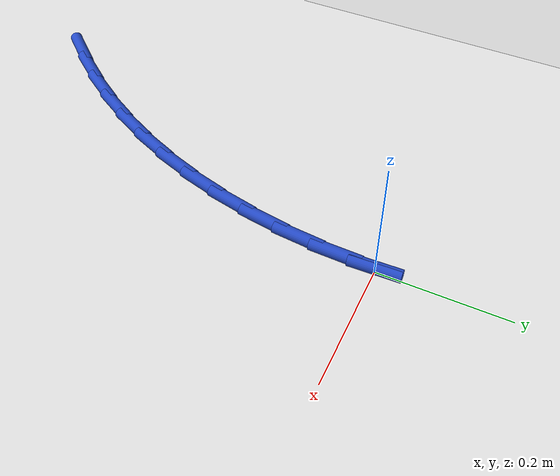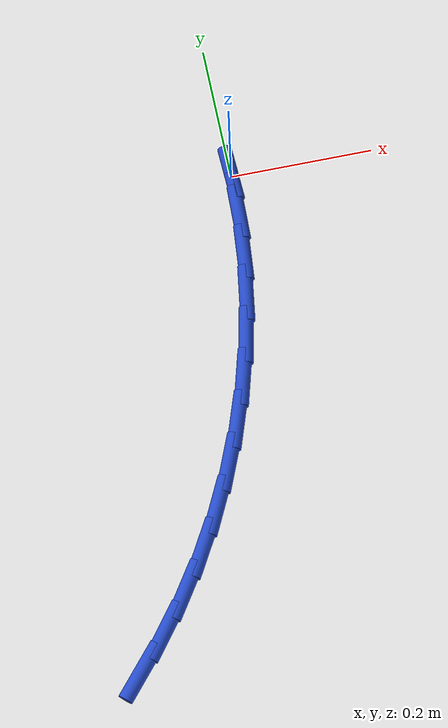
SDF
<sdf version="1.6">
 <world name="default">
  <model name="ground_plane">
   <static>1</static>
   <link name="link">
    <collision name="collision">
     <geometry><plane><normal>0 0 1</normal><size>100 100</size></plane></geometry>
     <surface><friction><ode><mu>100</mu><mu2>50</mu2></ode></friction></surface>
    </collision>
    <visual name="visual">
     <cast_shadows>0</cast_shadows>
     <geometry><plane><normal>0 0 1</normal><size>100 100</size></plane></geometry>
     <material>
      <script><uri>file://media/materials/scripts/gazebo.material</uri><name>Gazebo/WhiteGlow</name></script>
     </material>
    </visual>
   </link>
  </model>
  <model name="line">
   <link name="link_0">
    <pose>-6.938893903907228e-18 1.1102230246251565e-16 0.01 0 1.57 -1.5327581256820815</pose>
    <collision name="collision">
     <geometry><cylinder><radius>0.01</radius><length>0.08</length></cylinder></geometry>
    </collision>
    <visual name="visual">
     <material>
      <script><name>Gazebo/Blue</name><uri>file://media/materials/scripts/gazebo.material</uri></script>
     </material>
     <geometry><cylinder><radius>0.01</radius><length>0.08</length></cylinder></geometry>
    </visual>
   </link>
   <link name="link_98">
    <pose>-0.24783054237579408 -0.6536637564350835 0.01 0 1.57 0.8575831560430716</pose>
    <collision name="collision">
     <geometry><cylinder><radius>0.01</radius><length>0.08</length></cylinder></geometry>
    </collision>
    <visual name="visual">
     <material>
      <script><name>Gazebo/Blue</name><uri>file://media/materials/scripts/gazebo.material</uri></script>
     </material>
     <geometry><cylinder><radius>0.01</radius><length>0.08</length></cylinder></geometry>
    </visual>
   </link>
   <link name="link_99">
    <pose>-0.20933975912516323 -0.6091724886290214 0.01 0 1.57 0.9201806928343117</pose>
    <collision name="collision">
     <geometry><cylinder><radius>0.01</radius><length>0.08</length></cylinder></geometry>
    </collision>
    <visual name="visual">
     <material>
      <script><name>Gazebo/Blue</name><uri>file://media/materials/scripts/gazebo.material</uri></script>
     </material>
     <geometry><cylinder><radius>0.01</radius><length>0.08</length></cylinder></geometry>
    </visual>
   </link>
   <link name="link_100">
    <pose>-0.1737101211887414 -0.5623638329172491 0.01 0 1.57 0.9861805285351946</pose>
    <collision name="collision">
     <geometry><cylinder><radius>0.01</radius><length>0.08</length></cylinder></geometry>
    </collision>
    <visual name="visual">
     <material>
      <script><name>Gazebo/Blue</name><uri>file://media/materials/scripts/gazebo.material</uri></script>
     </material>
     <geometry><cylinder><radius>0.01</radius><length>0.08</length></cylinder></geometry>
    </visual>
   </link>
   <link name="link_101">
    <pose>-0.14115568090631492 -0.5131720108815591 0.01 0 1.57 1.0525792667337217</pose>
    <collision name="collision">
     <geometry><cylinder><radius>0.01</radius><length>0.08</length></cylinder></geometry>
    </collision>
    <visual name="visual">
     <material>
      <script><name>Gazebo/Blue</name><uri>file://media/materials/scripts/gazebo.material</uri></script>
     </material>
     <geometry><cylinder><radius>0.01</radius><length>0.08</length></cylinder></geometry>
    </visual>
   </link>
   <link name="link_102">
    <pose>-0.11181012737627855 -0.46170635338988325 0.01 0 1.57 1.117156045759601</pose>
    <collision name="collision">
     <geometry><cylinder><radius>0.01</radius><length>0.08</length></cylinder></geometry>
    </collision>
    <visual name="visual">
     <material>
      <script><name>Gazebo/Blue</name><uri>file://media/materials/scripts/gazebo.material</uri></script>
     </material>
     <geometry><cylinder><radius>0.01</radius><length>0.08</length></cylinder></geometry>
    </visual>
   </link>
   <link name="link_103">
    <pose>-0.08573705876980936 -0.4082289175070843 0.01 0 1.57 1.1801761236696466</pose>
    <collision name="collision">
     <geometry><cylinder><radius>0.01</radius><length>0.08</length></cylinder></geometry>
    </collision>
    <visual name="visual">
     <material>
      <script><name>Gazebo/Blue</name><uri>file://media/materials/scripts/gazebo.material</uri></script>
     </material>
     <geometry><cylinder><radius>0.01</radius><length>0.08</length></cylinder></geometry>
    </visual>
   </link>
   <link name="link_104">
    <pose>-0.06299772322518771 -0.3530068809548748 0.01 0 1.57 1.242006275634317</pose>
    <collision name="collision">
     <geometry><cylinder><radius>0.01</radius><length>0.08</length></cylinder></geometry>
    </collision>
    <visual name="visual">
     <material>
      <script><name>Gazebo/Blue</name><uri>file://media/materials/scripts/gazebo.material</uri></script>
     </material>
     <geometry><cylinder><radius>0.01</radius><length>0.08</length></cylinder></geometry>
    </visual>
   </link>
   <link name="link_105">
    <pose>-0.043653368880695174 -0.2963074214549702 0.01 0 1.57 1.303024920323703</pose>
    <collision name="collision">
     <geometry><cylinder><radius>0.01</radius><length>0.08</length></cylinder></geometry>
    </collision>
    <visual name="visual">
     <material>
      <script><name>Gazebo/Blue</name><uri>file://media/materials/scripts/gazebo.material</uri></script>
     </material>
     <geometry><cylinder><radius>0.01</radius><length>0.08</length></cylinder></geometry>
    </visual>
   </link>
   <link name="link_106">
    <pose>-0.027765243874612308 -0.23839771672908328 0.01 0 1.57 1.3636159267743588</pose>
    <collision name="collision">
     <geometry><cylinder><radius>0.01</radius><length>0.08</length></cylinder></geometry>
    </collision>
    <visual name="visual">
     <material>
      <script><name>Gazebo/Blue</name><uri>file://media/materials/scripts/gazebo.material</uri></script>
     </material>
     <geometry><cylinder><radius>0.01</radius><length>0.08</length></cylinder></geometry>
    </visual>
   </link>
   <link name="link_107">
    <pose>-0.015394596345220474 -0.17954494449892927 0.01 0 1.57 1.4241641098444318</pose>
    <collision name="collision">
     <geometry><cylinder><radius>0.01</radius><length>0.08</length></cylinder></geometry>
    </collision>
    <visual name="visual">
     <material>
      <script><name>Gazebo/Blue</name><uri>file://media/materials/scripts/gazebo.material</uri></script>
     </material>
     <geometry><cylinder><radius>0.01</radius><length>0.08</length></cylinder></geometry>
    </visual>
   </link>
   <link name="link_108">
    <pose>-0.006602674430800379 -0.12001628248622095 0.01 0 1.57 1.485051563071489</pose>
    <collision name="collision">
     <geometry><cylinder><radius>0.01</radius><length>0.08</length></cylinder></geometry>
    </collision>
    <visual name="visual">
     <material>
      <script><name>Gazebo/Blue</name><uri>file://media/materials/scripts/gazebo.material</uri></script>
     </material>
     <geometry><cylinder><radius>0.01</radius><length>0.08</length></cylinder></geometry>
    </visual>
   </link>
   <link name="link_109">
    <pose>-0.0014507262696332682 -0.06007890841267366 0.01 0 1.57 1.5466540039029104</pose>
    <collision name="collision">
     <geometry><cylinder><radius>0.01</radius><length>0.08</length></cylinder></geometry>
    </collision>
    <visual name="visual">
     <material>
      <script><name>Gazebo/Blue</name><uri>file://media/materials/scripts/gazebo.material</uri></script>
     </material>
     <geometry><cylinder><radius>0.01</radius><length>0.08</length></cylinder></geometry>
    </visual>
   </link>
   <link name="link_110">
    <pose>-2.0816681711721685e-17 0.0 0.01 0 1.57 -1.5322563227310466</pose>
    <collision name="collision">
     <geometry><cylinder><radius>0.01</radius><length>0.08</length></cylinder></geometry>
    </collision>
    <visual name="visual">
     <material>
      <script><name>Gazebo/Blue</name><uri>file://media/materials/scripts/gazebo.material</uri></script>
     </material>
     <geometry><cylinder><radius>0.01</radius><length>0.08</length></cylinder></geometry>
    </visual>
   </link>
  </model>
 </world>
</sdf>
